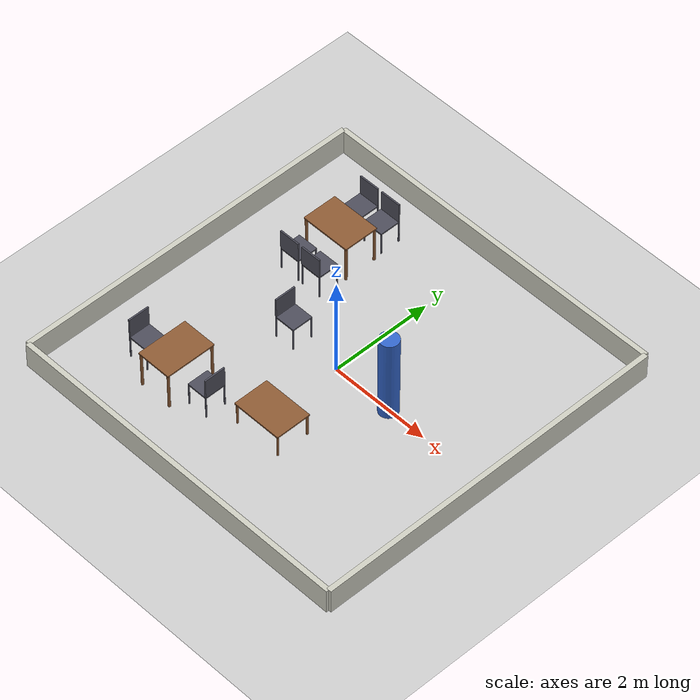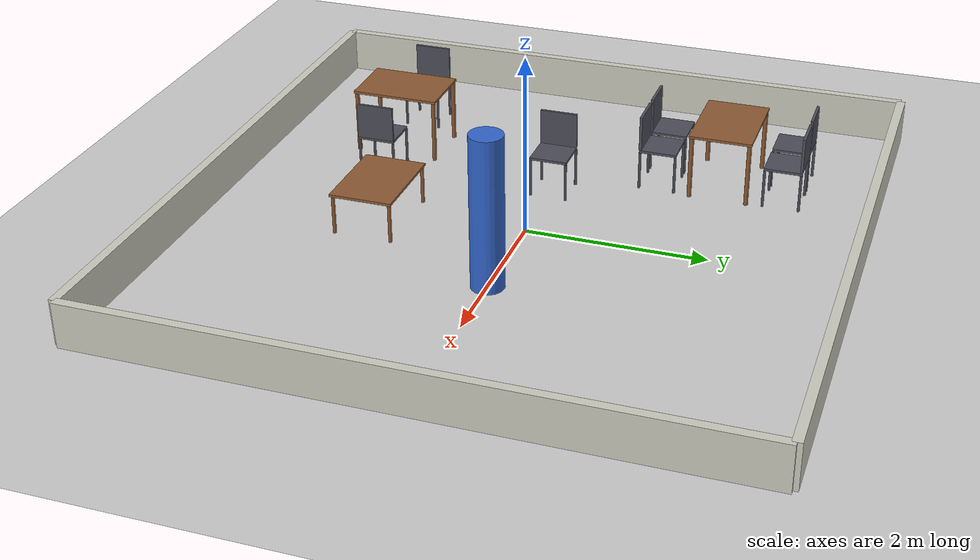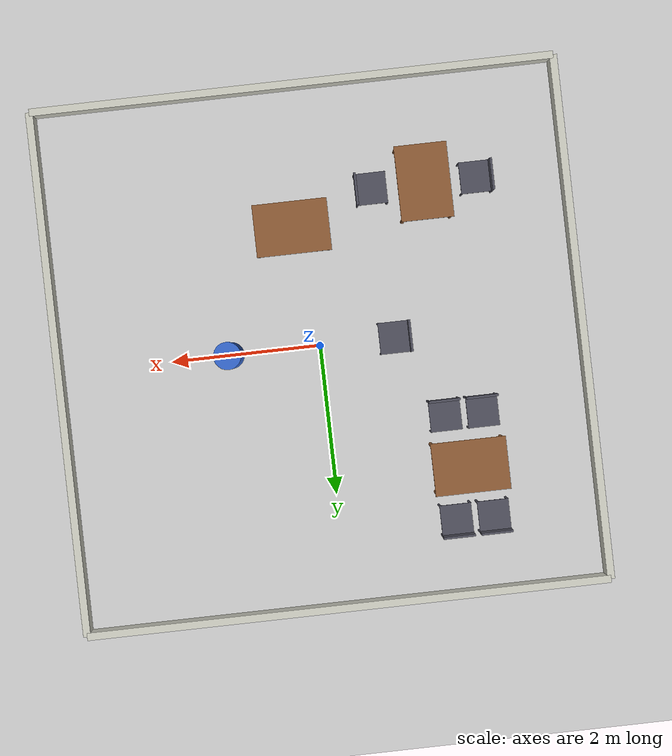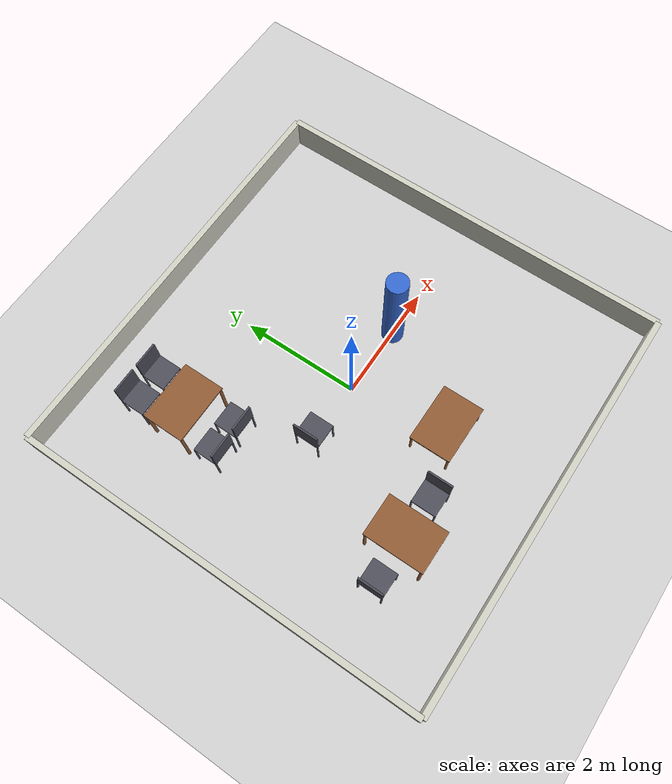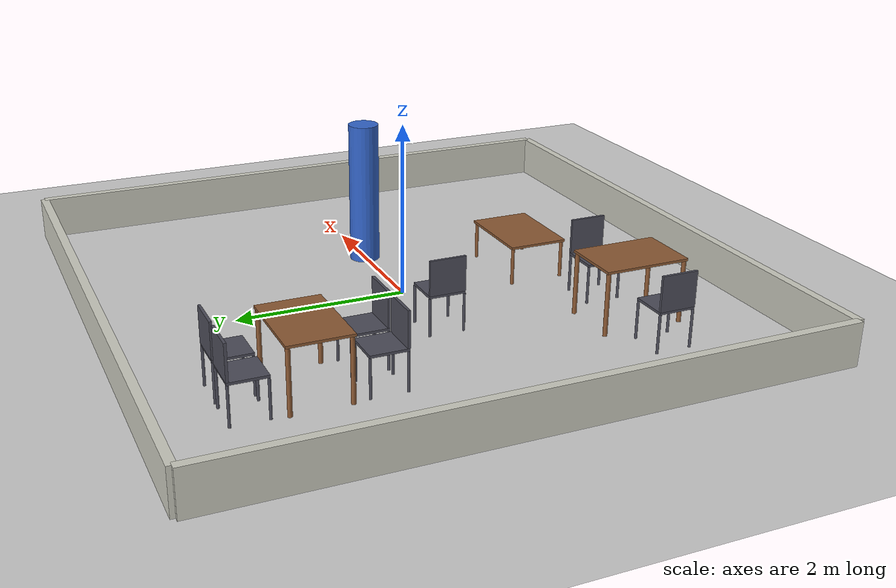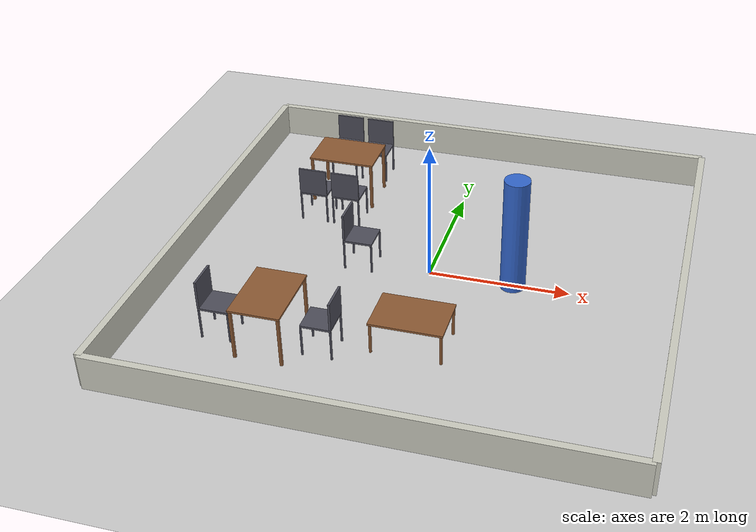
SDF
<?xml version="1.0"?>
<!-- Habitación con dos mesas, sillas alrededor, una silla suelta y una mesa baja -->
<sdf version="1.6">
  <world name="emotion_world">
    <include><uri>model://sun</uri></include>
    <include><uri>model://ground_plane</uri></include>
    <physics type="ode">
      <real_time_update_rate>1000.0</real_time_update_rate>
      <max_step_size>0.001</max_step_size>
    </physics>

    <model name="room">
      <static>true</static>
      <pose>0 0 0 0 0 0</pose>
      <link name="n">
        <pose>0 3.5 0.25 0 0 0</pose>
        <collision name="c"><geometry><box><size>7.0 0.1 0.5</size></box></geometry></collision>
        <visual name="v"><geometry><box><size>7.0 0.1 0.5</size></box></geometry>
          <material><ambient>0.8 0.8 0.75 1</ambient><diffuse>0.8 0.8 0.75 1</diffuse></material></visual>
      </link>
      <link name="s">
        <pose>0 -3.5 0.25 0 0 0</pose>
        <collision name="c"><geometry><box><size>7.0 0.1 0.5</size></box></geometry></collision>
        <visual name="v"><geometry><box><size>7.0 0.1 0.5</size></box></geometry>
          <material><ambient>0.8 0.8 0.75 1</ambient><diffuse>0.8 0.8 0.75 1</diffuse></material></visual>
      </link>
      <link name="e">
        <pose>3.5 0 0.25 0 0 0</pose>
        <collision name="c"><geometry><box><size>0.1 7.0 0.5</size></box></geometry></collision>
        <visual name="v"><geometry><box><size>0.1 7.0 0.5</size></box></geometry>
          <material><ambient>0.8 0.8 0.75 1</ambient><diffuse>0.8 0.8 0.75 1</diffuse></material></visual>
      </link>
      <link name="w">
        <pose>-3.5 0 0.25 0 0 0</pose>
        <collision name="c"><geometry><box><size>0.1 7.0 0.5</size></box></geometry></collision>
        <visual name="v"><geometry><box><size>0.1 7.0 0.5</size></box></geometry>
          <material><ambient>0.8 0.8 0.75 1</ambient><diffuse>0.8 0.8 0.75 1</diffuse></material></visual>
      </link>
    </model>

    <!-- Mesa A con cuatro sillas -->
    <model name="table_a">
      <static>true</static>
      <pose>-1.8 1.8 0 0 0 0</pose>
      <link name="leg0">
        <pose>0.47 0.32 0.36 0 0 0</pose>
        <collision name="c"><geometry><cylinder><radius>0.025</radius><length>0.72</length></cylinder></geometry></collision>
        <visual name="v"><geometry><cylinder><radius>0.025</radius><length>0.72</length></cylinder></geometry>
          <material><ambient>0.55 0.35 0.2 1</ambient><diffuse>0.55 0.35 0.2 1</diffuse></material></visual>
      </link>
      <link name="leg1">
        <pose>0.47 -0.32 0.36 0 0 0</pose>
        <collision name="c"><geometry><cylinder><radius>0.025</radius><length>0.72</length></cylinder></geometry></collision>
        <visual name="v"><geometry><cylinder><radius>0.025</radius><length>0.72</length></cylinder></geometry>
          <material><ambient>0.55 0.35 0.2 1</ambient><diffuse>0.55 0.35 0.2 1</diffuse></material></visual>
      </link>
      <link name="leg2">
        <pose>-0.47 0.32 0.36 0 0 0</pose>
        <collision name="c"><geometry><cylinder><radius>0.025</radius><length>0.72</length></cylinder></geometry></collision>
        <visual name="v"><geometry><cylinder><radius>0.025</radius><length>0.72</length></cylinder></geometry>
          <material><ambient>0.55 0.35 0.2 1</ambient><diffuse>0.55 0.35 0.2 1</diffuse></material></visual>
      </link>
      <link name="leg3">
        <pose>-0.47 -0.32 0.36 0 0 0</pose>
        <collision name="c"><geometry><cylinder><radius>0.025</radius><length>0.72</length></cylinder></geometry></collision>
        <visual name="v"><geometry><cylinder><radius>0.025</radius><length>0.72</length></cylinder></geometry>
          <material><ambient>0.55 0.35 0.2 1</ambient><diffuse>0.55 0.35 0.2 1</diffuse></material></visual>
      </link>
      <link name="top">
        <pose>0 0 0.735 0 0 0</pose>
        <collision name="c"><geometry><box><size>1.0 0.7 0.03</size></box></geometry></collision>
        <visual name="v"><geometry><box><size>1.0 0.7 0.03</size></box></geometry>
          <material><ambient>0.55 0.35 0.2 1</ambient><diffuse>0.55 0.35 0.2 1</diffuse></material></visual>
      </link>
    </model>

    <model name="chair_a1">
      <static>true</static>
      <pose>-2.05 2.5 0 0 0 -1.5708</pose>
      <link name="leg0">
        <pose>0.2 0.2 0.22 0 0 0</pose>
        <collision name="c"><geometry><cylinder><radius>0.015</radius><length>0.44</length></cylinder></geometry></collision>
        <visual name="v"><geometry><cylinder><radius>0.015</radius><length>0.44</length></cylinder></geometry>
          <material><ambient>0.3 0.3 0.35 1</ambient><diffuse>0.3 0.3 0.35 1</diffuse></material></visual>
      </link>
      <link name="leg1">
        <pose>0.2 -0.2 0.22 0 0 0</pose>
        <collision name="c"><geometry><cylinder><radius>0.015</radius><length>0.44</length></cylinder></geometry></collision>
        <visual name="v"><geometry><cylinder><radius>0.015</radius><length>0.44</length></cylinder></geometry>
          <material><ambient>0.3 0.3 0.35 1</ambient><diffuse>0.3 0.3 0.35 1</diffuse></material></visual>
      </link>
      <link name="leg2">
        <pose>-0.2 0.2 0.22 0 0 0</pose>
        <collision name="c"><geometry><cylinder><radius>0.015</radius><length>0.44</length></cylinder></geometry></collision>
        <visual name="v"><geometry><cylinder><radius>0.015</radius><length>0.44</length></cylinder></geometry>
          <material><ambient>0.3 0.3 0.35 1</ambient><diffuse>0.3 0.3 0.35 1</diffuse></material></visual>
      </link>
      <link name="leg3">
        <pose>-0.2 -0.2 0.22 0 0 0</pose>
        <collision name="c"><geometry><cylinder><radius>0.015</radius><length>0.44</length></cylinder></geometry></collision>
        <visual name="v"><geometry><cylinder><radius>0.015</radius><length>0.44</length></cylinder></geometry>
          <material><ambient>0.3 0.3 0.35 1</ambient><diffuse>0.3 0.3 0.35 1</diffuse></material></visual>
      </link>
      <link name="seat">
        <pose>0 0 0.455 0 0 0</pose>
        <collision name="c"><geometry><box><size>0.42 0.42 0.03</size></box></geometry></collision>
        <visual name="v"><geometry><box><size>0.42 0.42 0.03</size></box></geometry>
          <material><ambient>0.3 0.3 0.35 1</ambient><diffuse>0.3 0.3 0.35 1</diffuse></material></visual>
      </link>
      <link name="back">
        <pose>-0.2 0 0.67 0 0 0</pose>
        <collision name="c"><geometry><box><size>0.03 0.42 0.4</size></box></geometry></collision>
        <visual name="v"><geometry><box><size>0.03 0.42 0.4</size></box></geometry>
          <material><ambient>0.3 0.3 0.35 1</ambient><diffuse>0.3 0.3 0.35 1</diffuse></material></visual>
      </link>
    </model>

    <model name="chair_a2">
      <static>true</static>
      <pose>-1.55 2.5 0 0 0 -1.5708</pose>
      <link name="leg0">
        <pose>0.2 0.2 0.22 0 0 0</pose>
        <collision name="c"><geometry><cylinder><radius>0.015</radius><length>0.44</length></cylinder></geometry></collision>
        <visual name="v"><geometry><cylinder><radius>0.015</radius><length>0.44</length></cylinder></geometry>
          <material><ambient>0.3 0.3 0.35 1</ambient><diffuse>0.3 0.3 0.35 1</diffuse></material></visual>
      </link>
      <link name="leg1">
        <pose>0.2 -0.2 0.22 0 0 0</pose>
        <collision name="c"><geometry><cylinder><radius>0.015</radius><length>0.44</length></cylinder></geometry></collision>
        <visual name="v"><geometry><cylinder><radius>0.015</radius><length>0.44</length></cylinder></geometry>
          <material><ambient>0.3 0.3 0.35 1</ambient><diffuse>0.3 0.3 0.35 1</diffuse></material></visual>
      </link>
      <link name="leg2">
        <pose>-0.2 0.2 0.22 0 0 0</pose>
        <collision name="c"><geometry><cylinder><radius>0.015</radius><length>0.44</length></cylinder></geometry></collision>
        <visual name="v"><geometry><cylinder><radius>0.015</radius><length>0.44</length></cylinder></geometry>
          <material><ambient>0.3 0.3 0.35 1</ambient><diffuse>0.3 0.3 0.35 1</diffuse></material></visual>
      </link>
      <link name="leg3">
        <pose>-0.2 -0.2 0.22 0 0 0</pose>
        <collision name="c"><geometry><cylinder><radius>0.015</radius><length>0.44</length></cylinder></geometry></collision>
        <visual name="v"><geometry><cylinder><radius>0.015</radius><length>0.44</length></cylinder></geometry>
          <material><ambient>0.3 0.3 0.35 1</ambient><diffuse>0.3 0.3 0.35 1</diffuse></material></visual>
      </link>
      <link name="seat">
        <pose>0 0 0.455 0 0 0</pose>
        <collision name="c"><geometry><box><size>0.42 0.42 0.03</size></box></geometry></collision>
        <visual name="v"><geometry><box><size>0.42 0.42 0.03</size></box></geometry>
          <material><ambient>0.3 0.3 0.35 1</ambient><diffuse>0.3 0.3 0.35 1</diffuse></material></visual>
      </link>
      <link name="back">
        <pose>-0.2 0 0.67 0 0 0</pose>
        <collision name="c"><geometry><box><size>0.03 0.42 0.4</size></box></geometry></collision>
        <visual name="v"><geometry><box><size>0.03 0.42 0.4</size></box></geometry>
          <material><ambient>0.3 0.3 0.35 1</ambient><diffuse>0.3 0.3 0.35 1</diffuse></material></visual>
      </link>
    </model>

    <model name="chair_a3">
      <static>true</static>
      <pose>-2.05 1.1 0 0 0 1.5708</pose>
      <link name="leg0">
        <pose>0.2 0.2 0.22 0 0 0</pose>
        <collision name="c"><geometry><cylinder><radius>0.015</radius><length>0.44</length></cylinder></geometry></collision>
        <visual name="v"><geometry><cylinder><radius>0.015</radius><length>0.44</length></cylinder></geometry>
          <material><ambient>0.3 0.3 0.35 1</ambient><diffuse>0.3 0.3 0.35 1</diffuse></material></visual>
      </link>
      <link name="leg1">
        <pose>0.2 -0.2 0.22 0 0 0</pose>
        <collision name="c"><geometry><cylinder><radius>0.015</radius><length>0.44</length></cylinder></geometry></collision>
        <visual name="v"><geometry><cylinder><radius>0.015</radius><length>0.44</length></cylinder></geometry>
          <material><ambient>0.3 0.3 0.35 1</ambient><diffuse>0.3 0.3 0.35 1</diffuse></material></visual>
      </link>
      <link name="leg2">
        <pose>-0.2 0.2 0.22 0 0 0</pose>
        <collision name="c"><geometry><cylinder><radius>0.015</radius><length>0.44</length></cylinder></geometry></collision>
        <visual name="v"><geometry><cylinder><radius>0.015</radius><length>0.44</length></cylinder></geometry>
          <material><ambient>0.3 0.3 0.35 1</ambient><diffuse>0.3 0.3 0.35 1</diffuse></material></visual>
      </link>
      <link name="leg3">
        <pose>-0.2 -0.2 0.22 0 0 0</pose>
        <collision name="c"><geometry><cylinder><radius>0.015</radius><length>0.44</length></cylinder></geometry></collision>
        <visual name="v"><geometry><cylinder><radius>0.015</radius><length>0.44</length></cylinder></geometry>
          <material><ambient>0.3 0.3 0.35 1</ambient><diffuse>0.3 0.3 0.35 1</diffuse></material></visual>
      </link>
      <link name="seat">
        <pose>0 0 0.455 0 0 0</pose>
        <collision name="c"><geometry><box><size>0.42 0.42 0.03</size></box></geometry></collision>
        <visual name="v"><geometry><box><size>0.42 0.42 0.03</size></box></geometry>
          <material><ambient>0.3 0.3 0.35 1</ambient><diffuse>0.3 0.3 0.35 1</diffuse></material></visual>
      </link>
      <link name="back">
        <pose>-0.2 0 0.67 0 0 0</pose>
        <collision name="c"><geometry><box><size>0.03 0.42 0.4</size></box></geometry></collision>
        <visual name="v"><geometry><box><size>0.03 0.42 0.4</size></box></geometry>
          <material><ambient>0.3 0.3 0.35 1</ambient><diffuse>0.3 0.3 0.35 1</diffuse></material></visual>
      </link>
    </model>

    <model name="chair_a4">
      <static>true</static>
      <pose>-1.55 1.1 0 0 0 1.5708</pose>
      <link name="leg0">
        <pose>0.2 0.2 0.22 0 0 0</pose>
        <collision name="c"><geometry><cylinder><radius>0.015</radius><length>0.44</length></cylinder></geometry></collision>
        <visual name="v"><geometry><cylinder><radius>0.015</radius><length>0.44</length></cylinder></geometry>
          <material><ambient>0.3 0.3 0.35 1</ambient><diffuse>0.3 0.3 0.35 1</diffuse></material></visual>
      </link>
      <link name="leg1">
        <pose>0.2 -0.2 0.22 0 0 0</pose>
        <collision name="c"><geometry><cylinder><radius>0.015</radius><length>0.44</length></cylinder></geometry></collision>
        <visual name="v"><geometry><cylinder><radius>0.015</radius><length>0.44</length></cylinder></geometry>
          <material><ambient>0.3 0.3 0.35 1</ambient><diffuse>0.3 0.3 0.35 1</diffuse></material></visual>
      </link>
      <link name="leg2">
        <pose>-0.2 0.2 0.22 0 0 0</pose>
        <collision name="c"><geometry><cylinder><radius>0.015</radius><length>0.44</length></cylinder></geometry></collision>
        <visual name="v"><geometry><cylinder><radius>0.015</radius><length>0.44</length></cylinder></geometry>
          <material><ambient>0.3 0.3 0.35 1</ambient><diffuse>0.3 0.3 0.35 1</diffuse></material></visual>
      </link>
      <link name="leg3">
        <pose>-0.2 -0.2 0.22 0 0 0</pose>
        <collision name="c"><geometry><cylinder><radius>0.015</radius><length>0.44</length></cylinder></geometry></collision>
        <visual name="v"><geometry><cylinder><radius>0.015</radius><length>0.44</length></cylinder></geometry>
          <material><ambient>0.3 0.3 0.35 1</ambient><diffuse>0.3 0.3 0.35 1</diffuse></material></visual>
      </link>
      <link name="seat">
        <pose>0 0 0.455 0 0 0</pose>
        <collision name="c"><geometry><box><size>0.42 0.42 0.03</size></box></geometry></collision>
        <visual name="v"><geometry><box><size>0.42 0.42 0.03</size></box></geometry>
          <material><ambient>0.3 0.3 0.35 1</ambient><diffuse>0.3 0.3 0.35 1</diffuse></material></visual>
      </link>
      <link name="back">
        <pose>-0.2 0 0.67 0 0 0</pose>
        <collision name="c"><geometry><box><size>0.03 0.42 0.4</size></box></geometry></collision>
        <visual name="v"><geometry><box><size>0.03 0.42 0.4</size></box></geometry>
          <material><ambient>0.3 0.3 0.35 1</ambient><diffuse>0.3 0.3 0.35 1</diffuse></material></visual>
      </link>
    </model>

    <!-- Mesa B con dos sillas -->
    <model name="table_b">
      <static>true</static>
      <pose>-1.6 -2 0 0 0 1.5708</pose>
      <link name="leg0">
        <pose>0.47 0.32 0.36 0 0 0</pose>
        <collision name="c"><geometry><cylinder><radius>0.025</radius><length>0.72</length></cylinder></geometry></collision>
        <visual name="v"><geometry><cylinder><radius>0.025</radius><length>0.72</length></cylinder></geometry>
          <material><ambient>0.55 0.35 0.2 1</ambient><diffuse>0.55 0.35 0.2 1</diffuse></material></visual>
      </link>
      <link name="leg1">
        <pose>0.47 -0.32 0.36 0 0 0</pose>
        <collision name="c"><geometry><cylinder><radius>0.025</radius><length>0.72</length></cylinder></geometry></collision>
        <visual name="v"><geometry><cylinder><radius>0.025</radius><length>0.72</length></cylinder></geometry>
          <material><ambient>0.55 0.35 0.2 1</ambient><diffuse>0.55 0.35 0.2 1</diffuse></material></visual>
      </link>
      <link name="leg2">
        <pose>-0.47 0.32 0.36 0 0 0</pose>
        <collision name="c"><geometry><cylinder><radius>0.025</radius><length>0.72</length></cylinder></geometry></collision>
        <visual name="v"><geometry><cylinder><radius>0.025</radius><length>0.72</length></cylinder></geometry>
          <material><ambient>0.55 0.35 0.2 1</ambient><diffuse>0.55 0.35 0.2 1</diffuse></material></visual>
      </link>
      <link name="leg3">
        <pose>-0.47 -0.32 0.36 0 0 0</pose>
        <collision name="c"><geometry><cylinder><radius>0.025</radius><length>0.72</length></cylinder></geometry></collision>
        <visual name="v"><geometry><cylinder><radius>0.025</radius><length>0.72</length></cylinder></geometry>
          <material><ambient>0.55 0.35 0.2 1</ambient><diffuse>0.55 0.35 0.2 1</diffuse></material></visual>
      </link>
      <link name="top">
        <pose>0 0 0.735 0 0 0</pose>
        <collision name="c"><geometry><box><size>1.0 0.7 0.03</size></box></geometry></collision>
        <visual name="v"><geometry><box><size>1.0 0.7 0.03</size></box></geometry>
          <material><ambient>0.55 0.35 0.2 1</ambient><diffuse>0.55 0.35 0.2 1</diffuse></material></visual>
      </link>
    </model>

    <model name="chair_b1">
      <static>true</static>
      <pose>-0.9 -2 0 0 0 3.14159</pose>
      <link name="leg0">
        <pose>0.2 0.2 0.22 0 0 0</pose>
        <collision name="c"><geometry><cylinder><radius>0.015</radius><length>0.44</length></cylinder></geometry></collision>
        <visual name="v"><geometry><cylinder><radius>0.015</radius><length>0.44</length></cylinder></geometry>
          <material><ambient>0.3 0.3 0.35 1</ambient><diffuse>0.3 0.3 0.35 1</diffuse></material></visual>
      </link>
      <link name="leg1">
        <pose>0.2 -0.2 0.22 0 0 0</pose>
        <collision name="c"><geometry><cylinder><radius>0.015</radius><length>0.44</length></cylinder></geometry></collision>
        <visual name="v"><geometry><cylinder><radius>0.015</radius><length>0.44</length></cylinder></geometry>
          <material><ambient>0.3 0.3 0.35 1</ambient><diffuse>0.3 0.3 0.35 1</diffuse></material></visual>
      </link>
      <link name="leg2">
        <pose>-0.2 0.2 0.22 0 0 0</pose>
        <collision name="c"><geometry><cylinder><radius>0.015</radius><length>0.44</length></cylinder></geometry></collision>
        <visual name="v"><geometry><cylinder><radius>0.015</radius><length>0.44</length></cylinder></geometry>
          <material><ambient>0.3 0.3 0.35 1</ambient><diffuse>0.3 0.3 0.35 1</diffuse></material></visual>
      </link>
      <link name="leg3">
        <pose>-0.2 -0.2 0.22 0 0 0</pose>
        <collision name="c"><geometry><cylinder><radius>0.015</radius><length>0.44</length></cylinder></geometry></collision>
        <visual name="v"><geometry><cylinder><radius>0.015</radius><length>0.44</length></cylinder></geometry>
          <material><ambient>0.3 0.3 0.35 1</ambient><diffuse>0.3 0.3 0.35 1</diffuse></material></visual>
      </link>
      <link name="seat">
        <pose>0 0 0.455 0 0 0</pose>
        <collision name="c"><geometry><box><size>0.42 0.42 0.03</size></box></geometry></collision>
        <visual name="v"><geometry><box><size>0.42 0.42 0.03</size></box></geometry>
          <material><ambient>0.3 0.3 0.35 1</ambient><diffuse>0.3 0.3 0.35 1</diffuse></material></visual>
      </link>
      <link name="back">
        <pose>-0.2 0 0.67 0 0 0</pose>
        <collision name="c"><geometry><box><size>0.03 0.42 0.4</size></box></geometry></collision>
        <visual name="v"><geometry><box><size>0.03 0.42 0.4</size></box></geometry>
          <material><ambient>0.3 0.3 0.35 1</ambient><diffuse>0.3 0.3 0.35 1</diffuse></material></visual>
      </link>
    </model>

    <model name="chair_b2">
      <static>true</static>
      <pose>-2.3 -2 0 0 0 0</pose>
      <link name="leg0">
        <pose>0.2 0.2 0.22 0 0 0</pose>
        <collision name="c"><geometry><cylinder><radius>0.015</radius><length>0.44</length></cylinder></geometry></collision>
        <visual name="v"><geometry><cylinder><radius>0.015</radius><length>0.44</length></cylinder></geometry>
          <material><ambient>0.3 0.3 0.35 1</ambient><diffuse>0.3 0.3 0.35 1</diffuse></material></visual>
      </link>
      <link name="leg1">
        <pose>0.2 -0.2 0.22 0 0 0</pose>
        <collision name="c"><geometry><cylinder><radius>0.015</radius><length>0.44</length></cylinder></geometry></collision>
        <visual name="v"><geometry><cylinder><radius>0.015</radius><length>0.44</length></cylinder></geometry>
          <material><ambient>0.3 0.3 0.35 1</ambient><diffuse>0.3 0.3 0.35 1</diffuse></material></visual>
      </link>
      <link name="leg2">
        <pose>-0.2 0.2 0.22 0 0 0</pose>
        <collision name="c"><geometry><cylinder><radius>0.015</radius><length>0.44</length></cylinder></geometry></collision>
        <visual name="v"><geometry><cylinder><radius>0.015</radius><length>0.44</length></cylinder></geometry>
          <material><ambient>0.3 0.3 0.35 1</ambient><diffuse>0.3 0.3 0.35 1</diffuse></material></visual>
      </link>
      <link name="leg3">
        <pose>-0.2 -0.2 0.22 0 0 0</pose>
        <collision name="c"><geometry><cylinder><radius>0.015</radius><length>0.44</length></cylinder></geometry></collision>
        <visual name="v"><geometry><cylinder><radius>0.015</radius><length>0.44</length></cylinder></geometry>
          <material><ambient>0.3 0.3 0.35 1</ambient><diffuse>0.3 0.3 0.35 1</diffuse></material></visual>
      </link>
      <link name="seat">
        <pose>0 0 0.455 0 0 0</pose>
        <collision name="c"><geometry><box><size>0.42 0.42 0.03</size></box></geometry></collision>
        <visual name="v"><geometry><box><size>0.42 0.42 0.03</size></box></geometry>
          <material><ambient>0.3 0.3 0.35 1</ambient><diffuse>0.3 0.3 0.35 1</diffuse></material></visual>
      </link>
      <link name="back">
        <pose>-0.2 0 0.67 0 0 0</pose>
        <collision name="c"><geometry><box><size>0.03 0.42 0.4</size></box></geometry></collision>
        <visual name="v"><geometry><box><size>0.03 0.42 0.4</size></box></geometry>
          <material><ambient>0.3 0.3 0.35 1</ambient><diffuse>0.3 0.3 0.35 1</diffuse></material></visual>
      </link>
    </model>

    <!-- Silla suelta detrás del robot -->
    <model name="chair_c">
      <static>true</static>
      <pose>-1 0 0 0 0 0</pose>
      <link name="leg0">
        <pose>0.2 0.2 0.22 0 0 0</pose>
        <collision name="c"><geometry><cylinder><radius>0.015</radius><length>0.44</length></cylinder></geometry></collision>
        <visual name="v"><geometry><cylinder><radius>0.015</radius><length>0.44</length></cylinder></geometry>
          <material><ambient>0.3 0.3 0.35 1</ambient><diffuse>0.3 0.3 0.35 1</diffuse></material></visual>
      </link>
      <link name="leg1">
        <pose>0.2 -0.2 0.22 0 0 0</pose>
        <collision name="c"><geometry><cylinder><radius>0.015</radius><length>0.44</length></cylinder></geometry></collision>
        <visual name="v"><geometry><cylinder><radius>0.015</radius><length>0.44</length></cylinder></geometry>
          <material><ambient>0.3 0.3 0.35 1</ambient><diffuse>0.3 0.3 0.35 1</diffuse></material></visual>
      </link>
      <link name="leg2">
        <pose>-0.2 0.2 0.22 0 0 0</pose>
        <collision name="c"><geometry><cylinder><radius>0.015</radius><length>0.44</length></cylinder></geometry></collision>
        <visual name="v"><geometry><cylinder><radius>0.015</radius><length>0.44</length></cylinder></geometry>
          <material><ambient>0.3 0.3 0.35 1</ambient><diffuse>0.3 0.3 0.35 1</diffuse></material></visual>
      </link>
      <link name="leg3">
        <pose>-0.2 -0.2 0.22 0 0 0</pose>
        <collision name="c"><geometry><cylinder><radius>0.015</radius><length>0.44</length></cylinder></geometry></collision>
        <visual name="v"><geometry><cylinder><radius>0.015</radius><length>0.44</length></cylinder></geometry>
          <material><ambient>0.3 0.3 0.35 1</ambient><diffuse>0.3 0.3 0.35 1</diffuse></material></visual>
      </link>
      <link name="seat">
        <pose>0 0 0.455 0 0 0</pose>
        <collision name="c"><geometry><box><size>0.42 0.42 0.03</size></box></geometry></collision>
        <visual name="v"><geometry><box><size>0.42 0.42 0.03</size></box></geometry>
          <material><ambient>0.3 0.3 0.35 1</ambient><diffuse>0.3 0.3 0.35 1</diffuse></material></visual>
      </link>
      <link name="back">
        <pose>-0.2 0 0.67 0 0 0</pose>
        <collision name="c"><geometry><box><size>0.03 0.42 0.4</size></box></geometry></collision>
        <visual name="v"><geometry><box><size>0.03 0.42 0.4</size></box></geometry>
          <material><ambient>0.3 0.3 0.35 1</ambient><diffuse>0.3 0.3 0.35 1</diffuse></material></visual>
      </link>
    </model>

    <!-- Mesa baja: el robot no cabe debajo -->
    <model name="coffee_table">
      <static>true</static>
      <pose>0.2 -1.6 0 0 0 0</pose>
      <link name="leg0">
        <pose>0.47 0.32 0.22 0 0 0</pose>
        <collision name="c"><geometry><cylinder><radius>0.02</radius><length>0.44</length></cylinder></geometry></collision>
        <visual name="v"><geometry><cylinder><radius>0.02</radius><length>0.44</length></cylinder></geometry>
          <material><ambient>0.55 0.35 0.2 1</ambient><diffuse>0.55 0.35 0.2 1</diffuse></material></visual>
      </link>
      <link name="leg1">
        <pose>0.47 -0.32 0.22 0 0 0</pose>
        <collision name="c"><geometry><cylinder><radius>0.02</radius><length>0.44</length></cylinder></geometry></collision>
        <visual name="v"><geometry><cylinder><radius>0.02</radius><length>0.44</length></cylinder></geometry>
          <material><ambient>0.55 0.35 0.2 1</ambient><diffuse>0.55 0.35 0.2 1</diffuse></material></visual>
      </link>
      <link name="leg2">
        <pose>-0.47 0.32 0.22 0 0 0</pose>
        <collision name="c"><geometry><cylinder><radius>0.02</radius><length>0.44</length></cylinder></geometry></collision>
        <visual name="v"><geometry><cylinder><radius>0.02</radius><length>0.44</length></cylinder></geometry>
          <material><ambient>0.55 0.35 0.2 1</ambient><diffuse>0.55 0.35 0.2 1</diffuse></material></visual>
      </link>
      <link name="leg3">
        <pose>-0.47 -0.32 0.22 0 0 0</pose>
        <collision name="c"><geometry><cylinder><radius>0.02</radius><length>0.44</length></cylinder></geometry></collision>
        <visual name="v"><geometry><cylinder><radius>0.02</radius><length>0.44</length></cylinder></geometry>
          <material><ambient>0.55 0.35 0.2 1</ambient><diffuse>0.55 0.35 0.2 1</diffuse></material></visual>
      </link>
      <link name="top">
        <pose>0 0 0.455 0 0 0</pose>
        <collision name="c"><geometry><box><size>1.0 0.7 0.03</size></box></geometry></collision>
        <visual name="v"><geometry><box><size>1.0 0.7 0.03</size></box></geometry>
          <material><ambient>0.55 0.35 0.2 1</ambient><diffuse>0.55 0.35 0.2 1</diffuse></material></visual>
      </link>
    </model>

    <model name="person">
      <static>true</static>
      <pose>1.2 0 0 0 0 0</pose>
      <link name="body">
        <pose>0 0 0.85 0 0 0</pose>
        <collision name="c"><geometry><cylinder><radius>0.18</radius><length>1.7</length></cylinder></geometry></collision>
        <visual name="v"><geometry><cylinder><radius>0.18</radius><length>1.7</length></cylinder></geometry>
          <material><ambient>0.2 0.4 0.8 1</ambient><diffuse>0.2 0.4 0.8 1</diffuse></material></visual>
      </link>
    </model>
  </world>
</sdf>
